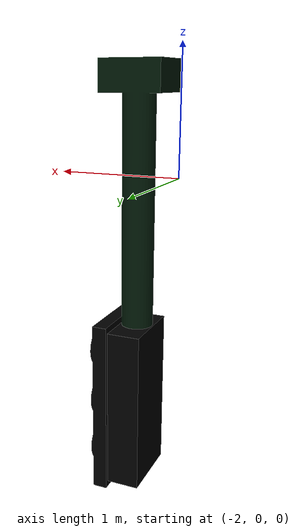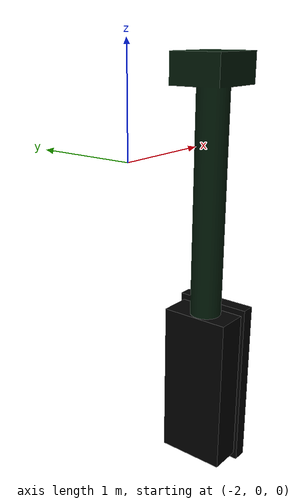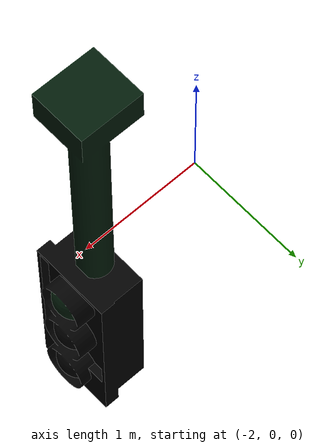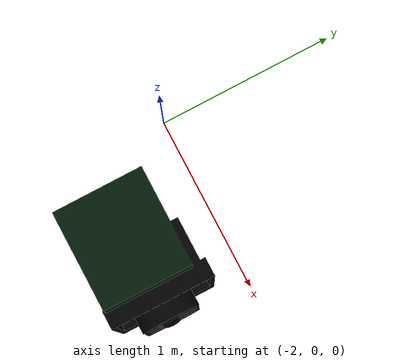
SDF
<?xml version="1.0" ?>
<sdf version="1.6">
  <model name="semaforo_verde">
    <static>true</static>
    <link name="link">
      <visual name="visual">
        <geometry>
          <mesh>
           <scale>0.7 0.7 0.7</scale>
            <uri>model://semaforo_verde/meshes/semaforo_verde.dae</uri>
          </mesh>
        </geometry>
      </visual>
    </link>
  </model>
</sdf>
